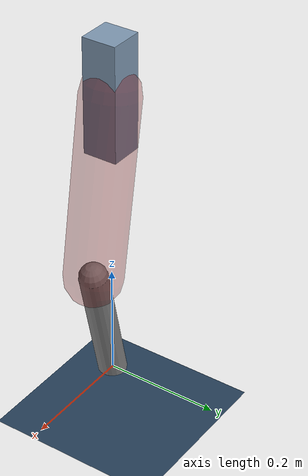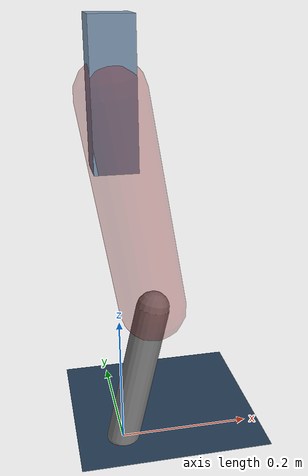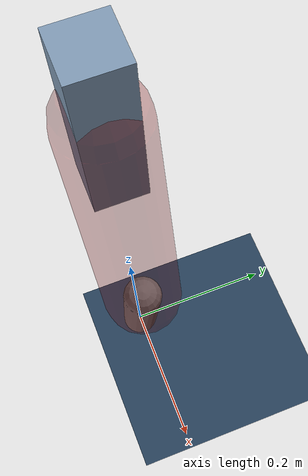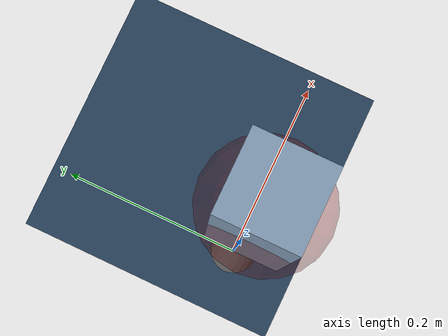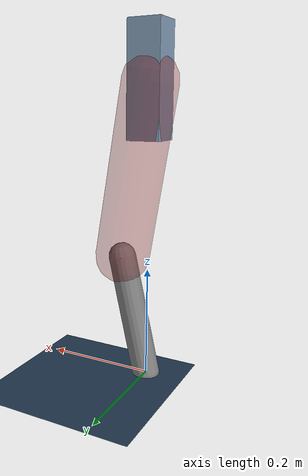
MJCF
<mujoco model="Hopper2D">
	<compiler inertiafromgeom="true" angle="radian" />
	<option timestep="0.001" integrator="implicit" cone="elliptic" solver="Newton" tolerance="1e-10" />

	<default>
		<geom contype="1" conaffinity="1" condim="3" friction="2 0.005 0.0001" solref="0.005 1" />
		<joint limited="true" damping="0.1" />
	</default>

	<asset>
		<texture name="skybox" type="skybox" builtin="gradient" rgb1=".4 .6 .8" rgb2="0 0 0" width="800" height="800" />
		<texture name="grid" type="2d" builtin="checker" rgb1=".1 .2 .3" rgb2=".2 .3 .4" width="300" height="300" mark="edge" markrgb=".2 .3 .4" />
		<material name="ground" texture="grid" texrepeat="1 1" texuniform="true" reflectance="0.1" />
		<material name="leg" rgba="0.5 0.6 0.7 1" />
	</asset>

	<worldbody>

		<geom name="floor" type="plane" size="5 5 0.25" material="ground" />

		<light directional="false" diffuse="0.8 0.8 0.8" specular="0.3 0.3 0.3" pos="0 0 2" dir="0 0 -1" />
		<light mode="targetbodycom" target="base" directional="false" diffuse="0.8 0.8 0.8" specular="0.3 0.3 0.3" pos="0 0 2" dir="0 0 -1" />

		<camera name="fixed" pos="0 -2 1" xyaxes="1 0 0 0 0 1" />
		<camera name="tracking" mode="trackcom" pos="0 -3 1" />

		<body name="root" pos="0 0 0.5326928148211845">
			<joint name="slide_x" type="slide" axis="1 0 0" range="-100 100" />
			<joint name="slide_z" type="slide" axis="0 0 1" range="0 10" />

			<body name="base" pos="0 0 0">
				<geom name="torso" type="box" size="0.03 0.03 0.1" mass="1.6869999999999998" material="leg" />

				<body name="link1" pos="0 0 0" euler="0 1.4090910231015388 0">
					<joint type="hinge" axis="0 -1 0" pos="0 0 0" name="hinge1" limited="true" range="-3.14 3.14" stiffness="0" damping="0.1" />
					<geom name="thigh" type="capsule" fromto="0 0 0 0.31723367805144986 0 0" size="0.05" rgba="0.5 0 0 0.3" mass="1.0356542985440595" />

					<body name="link2" pos="0.31723367805144986 0 0" euler="0 0.39022726160068993 0">
						<joint type="hinge" axis="0 -1 0" pos="0 0 0" name="hinge2" limited="true" range="-3.14 3.14" stiffness="0" damping="0.1" />
						<geom name="shank" type="capsule" fromto="0 0 0 0.2254591367697346 0 0" size="0.025" mass="0.42221322309276116" />

					</body>
				</body>
			</body>
		</body>
	</worldbody>

	<actuator>
		<motor name="torque1" joint="hinge1" ctrlrange="-56.56156699807269 56.56156699807269" ctrllimited="true" gear="1" />
		<motor name="torque2" joint="hinge2" ctrlrange="-45.260743918290046 45.260743918290046" ctrllimited="true" gear="1" />
	</actuator>
</mujoco>
